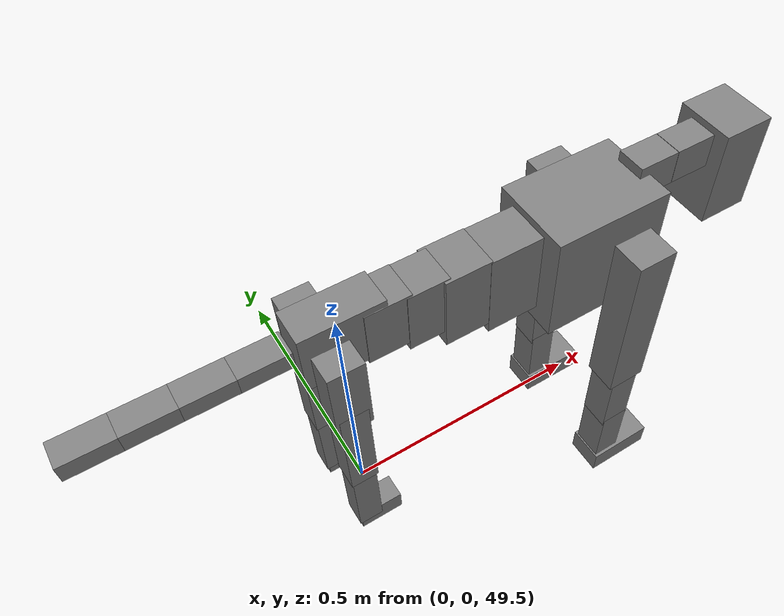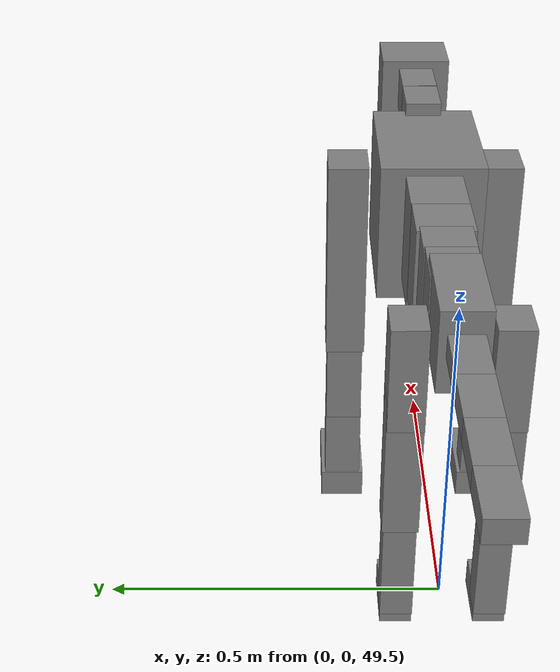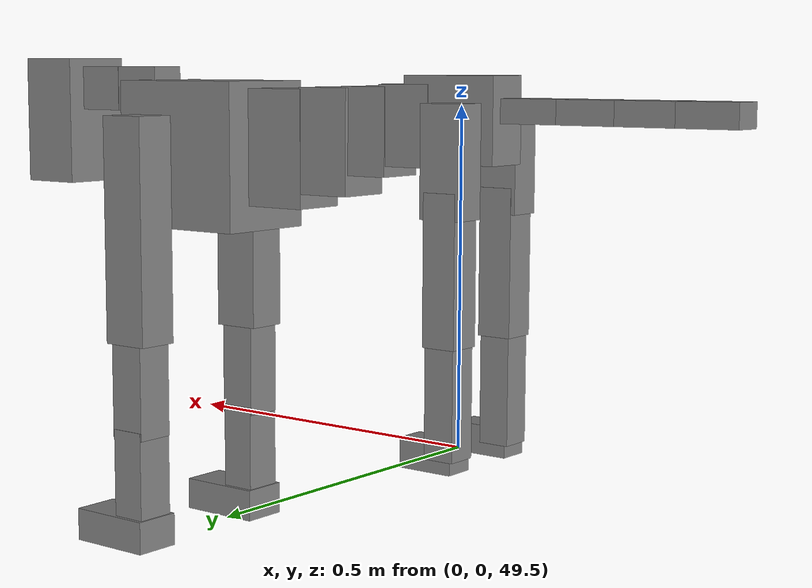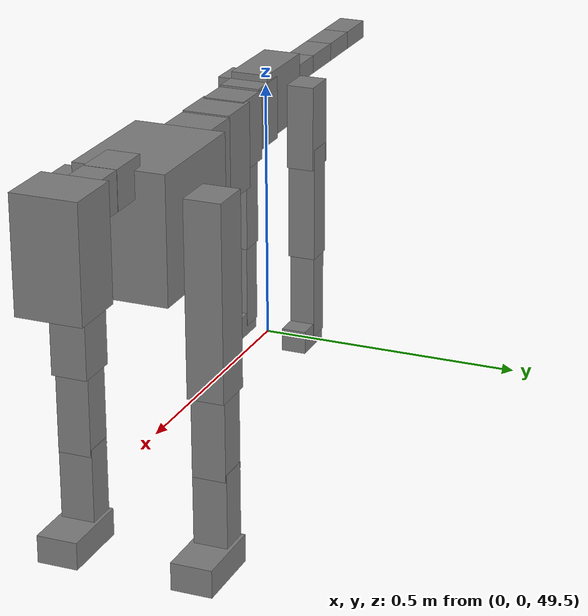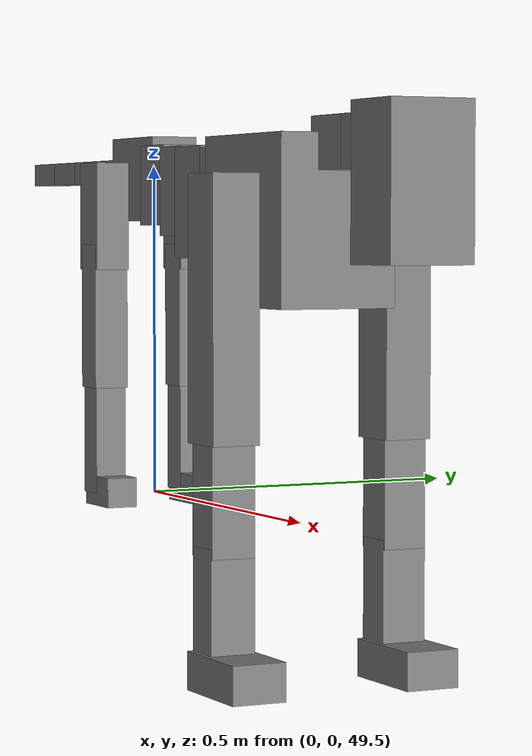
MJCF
<mujoco model="dog">

    <default>
        <joint armature="0.02" stiffness="1" damping="0.2" limited="true"/>
        <geom condim="3" friction="1 0.05 0.05" margin="0.01"/>
        <motor ctrllimited="true" ctrlrange="-1.0 1.0" forcelimited="true" gear="50"/>
    </default>

    <compiler inertiafromgeom="true" angle="radian"/>

    <option timestep="0.016" iterations="50" tolerance="1e-10" solver="Newton" jacobian="dense" cone="pyramidal"/>

    <size nconmax="20000" njmax="60000" nstack="5000000"/>
    <visual>
        <map force="0.1" zfar="30"/>
        <rgba haze="0.15 0.25 0.35 1"/>
        <quality shadowsize="2048"/>
        <global offwidth="800" offheight="800"/>
    </visual>

    <asset>
        <texture type="skybox" builtin="gradient" rgb1="0.3 0.5 0.7" rgb2="0 0 0" width="512" height="512"/>
        <texture name="texplane" type="2d" builtin="checker" rgb1=".2 .3 .4" rgb2=".1 0.15 0.2" width="512" height="512"
                 mark="cross" markrgb=".8 .8 .8"/>
        <texture name="texgeom" type="cube" builtin="flat" mark="cross" width="127" height="1278" rgb1="0.8 0.6 0.4"
                 rgb2="0.8 0.6 0.4" markrgb="1 1 1" random="0.01"/>

        <material name="matplane" reflectance="0.3" texture="texplane" texrepeat="1 1" texuniform="true"/>
        <material name="matgeom" texture="texgeom" texuniform="true" rgba="0.8 0.6 .4 1"/>
    </asset>

    <worldbody>
        <geom name="floor" pos="0 0 0" size="0 0 .25" type="plane" material="matplane" condim="3"/>

        <light directional="false" diffuse=".2 .2 .2" specular="0 0 0" pos="0 0 5" dir="0 0 -1" castshadow="false"/>
        <light mode="targetbodycom" target="torso" directional="false" diffuse=".8 .8 .8" specular="0.3 0.3 0.3"
               pos="0 0 4.0" dir="0 0 -1"/>

        <body name="root" pos="0 0 50">
            <freejoint name="root_1"/>
            <geom type="box" pos="0 0 -0.02" size="0.0774  0.0358  0.063" density="2030"/>

            <body name="spine1" pos="0.054 0 0">
                <joint name="spine1_y" axis="0 1 0" range="0 0.7" limited="true"/>
                <geom type="box" pos="0.02375 0 -0.03" size="0.04375  0.0375  0.05985" density="2030"/>

                <body name="spine2" pos="0.0612 0 0">
                    <joint name="spine2_y" axis="0 1 0" range="-0.15 0.15" limited="true"/>
                    <geom type="box" pos="0.03555  0  -0.04" size="0.04055  0.039  0.06615" density="2030"/>

                    <body name="spine3" pos="0.0730 0 0">
                        <joint name="spine3_y" axis="0 1 0" range="-0.15 0.15" limited="true"/>
                        <geom type="box" pos="0.03555  0  -0.057" size="0.04555  0.0445  0.081" density="2030"/>

                        <body name="spine4" pos="0.0780 0 0">
                            <joint name="spine4_y" axis="0 1 0" range="-0.15 0.15" limited="true"/>
                            <geom type="box" pos="0.05265  0  -0.07" size="0.05265  0.045  0.09135" density="2030"/>

                            <body name="torso" pos="0.1082 0 0">
                                <joint name="torso_y" axis="0 1 0" range="-0.15 0.15" limited="true"/>
                                <geom type="box" pos="0.11925  0  -0.085" size="0.11925  0.085  0.11745"
                                      density="2030"/>

                                <body name="neck1" pos="0.2160  0   0.0180">
                                    <joint name="neck1_y" axis="0 1 0" range="-1.2  -1" limited="true"/>
                                    <geom type="box" pos="0.0423  0  0" size="0.0423  0.03  0.036" density="2325"/>

                                    <body name="neck2" pos="0.0853  0  0">
                                        <joint name="neck2_y" axis="0 1 0" range="0.1  0" limited="true"/>
                                        <geom type="box" pos="0.0423  0  0" size="0.0423  0.03  0.036" density="2325"/>

                                        <body name="head" pos="0.0853  0  0">
                                            <joint name="head_y" axis="0 1 0" range="-0.3  -0.2" limited="true"/>
                                            <geom type="box" pos="0.0531  0  -0.055" size="0.0531  0.06  0.1044"
                                                  density="4030"/>

                                        </body>
                                    </body>
                                </body>

                                <body name="front_shoulder" pos="0.156  0   -0.0480">
                                    <joint name="front_shoulder_y" axis="0 1 0" range="-1 1.5" limited="true"/>
                                    <geom type="box" pos="0 0.13 -0.1548" size="0.0402  0.0343  0.1814" density="1158"/>
                                    <geom type="box" pos="0 -0.13 -0.1548" size="0.0402  0.0343  0.1814"
                                          density="1158"/>

                                    <body name="front_elbow" pos="0  0  -0.3095">
                                        <joint name="front_elbow_y" axis="0 1 0" range="-2 0" limited="true"/>
                                        <geom type="box" pos="0 0.13 -0.0891" size="0.0311  0.0317  0.0891"
                                              density="1081"/>
                                        <geom type="box" pos="0 -0.13 -0.0891" size="0.0311  0.0317  0.0891"
                                              density="1081"/>

                                        <body name="front_wrist" pos="0  0  -0.1782">
                                            <joint name="front_wrist_y" axis="0 1 0" range="-0.2 0" limited="true"/>
                                            <geom type="box" pos="0 0.13 -0.0723" size="0.0291  0.0324  0.0855"
                                                  density="1664"/>
                                            <geom type="box" pos="0 -0.13 -0.0723" size="0.0291  0.0324  0.0855"
                                                  density="1664"/>

                                            <body name="front_finger_end" pos="0  0  -0.1446">
                                                <joint name="front_finger_y" axis="0 1 0" range="-0.4 1"
                                                       limited="true"/>
                                                <geom type="box" pos="0.0391  0.13  -0.0116"
                                                      size="0.0717  0.0391  0.0266" density="1515"/>
                                                <geom type="box" pos="0.0391  -0.13  -0.0116"
                                                      size="0.0717  0.0391  0.0266" density="1515"/>

                                            </body>

                                        </body>
                                    </body>
                                </body>

                            </body>
                        </body>
                    </body>
                </body>
            </body>

            <body name="back_hip" pos="-0.03 0 -0.018">
                <joint name="back_hip_y" axis="0 1 0" range="-1.5 0.3" limited="true"/>
                <geom type="box" pos="0 0.07 -0.0583" size="0.0333  0.0261  0.0811" density="1154"/>
                <geom type="box" pos="0 -0.07 -0.0583" size="0.0333  0.0261  0.0811" density="1154"/>

                <body name="back_knee" pos="0  0  -0.1166">
                    <joint name="back_knee_y" axis="0 1 0" range="0 2.8" limited="true"/>
                    <geom type="box" pos="0 0.07 -0.0941" size="0.0268  0.0264  0.1097" density="1227"/>
                    <geom type="box" pos="0 -0.07 -0.0941" size="0.0268  0.0264  0.1097" density="1227"/>

                    <body name="back_ankle" pos="0  0  -0.1882">
                        <joint name="back_ankle_y" axis="0 1 0" range="-2.2 0" limited="true"/>
                        <geom type="box" pos="0 0.07 -0.0828" size="0.0240  0.0240  0.0941" density="1284"/>
                        <geom type="box" pos="0 -0.07 -0.0828" size="0.0240  0.0240  0.0941" density="1284"/>

                        <body name="back_toe_end" pos="0  0  -0.1657">
                            <joint name="back_toe_y" axis="0 1 0" range="-0.4 1" limited="true"/>
                            <geom type="box" pos="0.0237  0.07  -0.0073" size="0.0435  0.0237  0.0223" density="1515"/>
                            <geom type="box" pos="0.0237  -0.07  -0.0073" size="0.0435  0.0237  0.0223" density="1515"/>

                        </body>
                    </body>
                </body>
            </body>

            <body name="tail1" pos="-0.074 0 -0.006">
                <joint name="tail1_y" axis="0 1 0" range="-0.2 0.2" limited="true"/>
                <geom type="box" pos="-0.0536  0  0" size="0.045  0.025  0.0175" density="1587"/>

                <body name="tail2" pos="-0.09 0 0">
                    <joint name="tail2_y" axis="0 1 0" range="-0.2 0.2" limited="true"/>
                    <geom type="box" pos="-0.0536  0  0" size="0.045  0.025  0.0175" density="1587"/>

                    <body name="tail3" pos="-0.09 0 0">
                        <joint name="tail3_y" axis="0 1 0" range="-0.2 0.2" limited="true"/>
                        <geom type="box" pos="-0.0536  0  0" size="0.045  0.025  0.0175" density="1587"/>

                        <body name="tail4" pos="-0.09 0 0">
                            <joint name="tail4_y" axis="0 1 0" range="-0.2 0.2" limited="true"/>
                            <geom type="box" pos="-0.0536  0  0" size="0.045  0.025  0.0175" density="1587"/>

                        </body>
                    </body>
                </body>
            </body>
        </body>
    </worldbody>

    <actuator>
        <motor joint="spine1_y" forcerange="-150 150     "/>
        <motor joint="spine2_y" forcerange="-150 150     "/>
        <motor joint="spine3_y" forcerange="-150 150     "/>
        <motor joint="spine4_y" forcerange="-150 150     "/>
        <motor joint="torso_y" forcerange="-150 150     "/>
        <motor joint="neck1_y" forcerange="-100 100       "/>
        <motor joint="neck2_y" forcerange="-100 100       "/>
        <motor joint="head_y" forcerange="-150 150       "/>
        <motor joint="front_shoulder_y" forcerange="-186.57 142.28"/>
        <motor joint="front_elbow_y" forcerange="-178.21 152.67"/>
        <motor joint="front_wrist_y" forcerange="-110.91 148.12"/>
        <motor joint="front_finger_y" forcerange="-95.59 73.06"/>
        <motor joint="back_hip_y" forcerange="-299.80 248.54"/>
        <motor joint="back_knee_y" forcerange="-378.45 205.92"/>
        <motor joint="back_angle_y" forcerange="-204.31 79.12"/>
        <motor joint="back_toe_y" forcerange="-78.77 31.10"/>
        <motor joint="tail1_y" forcerange="-50 50     "/>
        <motor joint="tail2_y" forcerange="-50 50     "/>
        <motor joint="tail3_y" forcerange="-50 50     "/>
        <motor joint="tail4_y" forcerange="-50 50     "/>
    </actuator>
</mujoco>
